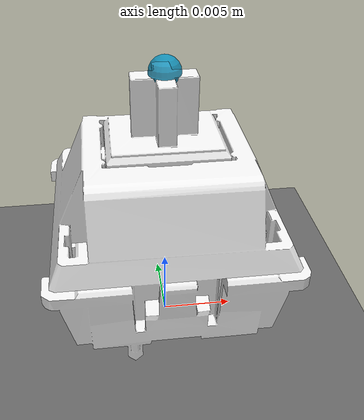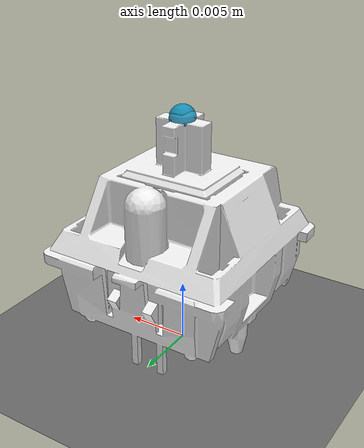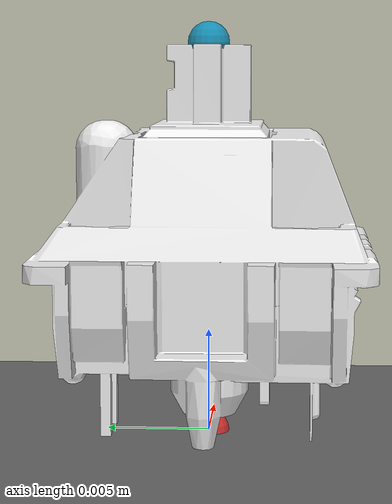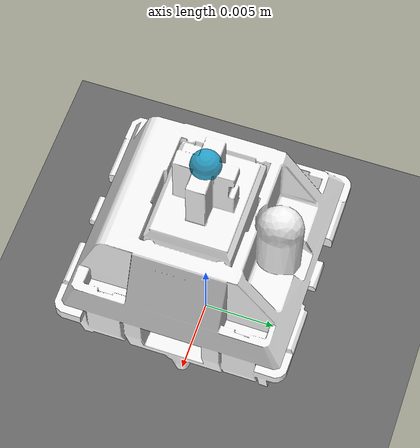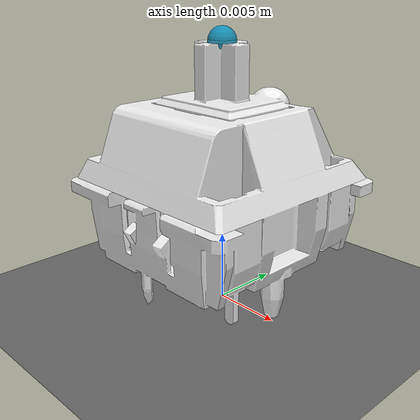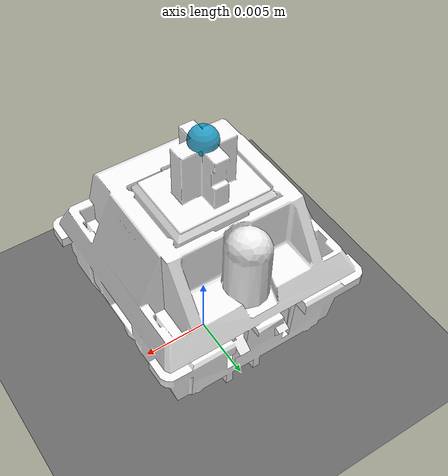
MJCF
<mujoco model="keyboard_switch_1u">

  <compiler angle="radian" autolimits="true"/>

  <option gravity="0 0 -9.81" timestep="0.002"/>

  <asset>
    <material name="abs_dark"
              rgba="0.95 0.95 0.95 1"
              specular="0.3"
              shininess="0.4"
              reflectance="0.05"/>

    <material name="abs_dark_collision"
              rgba="0.12 0.12 0.12 0.0"/>

    <material name="stem_red"
              rgba="0.85 0.1 0.1 1"
              specular="0.4"
              shininess="0.5"/>

    <mesh name="switch_mesh"
          file="../../models/meshes/Switch_Decimated.stl"
          scale="0.001 0.001 0.001"
          refpos="-7.350 0.053 -7.350"
          refquat="0.7071 -0.7071 0 0"/>

  </asset>

  <worldbody>

    <!-- Static ground plane -->
    <geom name="ground" type="plane" size="1 1 0.1"
          pos="0 0 0"
          friction="0.8 0.005 0.0001"
          rgba="0.4 0.4 0.4 1"/>

    <body name="switch_1u" pos="0 0 0">

      <inertial pos="0 0 0.00945"
                mass="0.009"
                diaginertia="2.1e-7 2.1e-7 1.9e-7"/>

      <freejoint name="switch_free"/>

      <geom name="switch_visual"
        type="mesh"
        mesh="switch_mesh"
        pos="-0.01475 -0.00002 0.00945"
        material="abs_dark"
        contype="0"
        conaffinity="0"/>

      <!-- ── PRIMITIVE COLLISION GEOMS ────────────────────────────────
           Invisible (alpha=0) — used for contact only
           Two primitives: main housing box + stem cylinder
      -->

      <!-- Main housing box -->
      <!-- 15.6×15.6×11.9mm, half = 0.0078, 0.0078, 0.00595 -->
      <!-- center z_local = 0.00595 (bottom face at z=0) -->
      <geom name="switch_housing_col"
            type="box"
            size="0.0078 0.0078 0.00595"
            pos="0 0 0.00595"
            material="abs_dark_collision"
            density="1050"
            friction="0.6 0.005 0.0001"
            condim="4"
            priority="1"/>

      <!-- Stem cylinder -->
      <!-- radius=4mm, half-height=3.5mm -->
      <!-- center z_local = 0.0119 + 0.0035 = 0.0154 -->
      <geom name="switch_stem_col"
            type="cylinder"
            size="0.004 0.0035"
            pos="0 0 0.0154"
            material="abs_dark_collision"
            density="800"
            friction="0.6 0.005 0.0001"
            condim="4"
            priority="1"/>

      <!-- ══════════════════════════════════════════════════════════════
           REGISTRATION SITES
           ══════════════════════════════════════════════════════════════ -->

      <!-- Bottom face center — insertion target point -->
      <!-- Robot aligns this to hot-swap socket site on PCB -->
      <site name="insertion_point"
            type="sphere"
            size="0.001"
            pos="0 0 0"
            rgba="1 0.2 0.2 0.8"/>

      <!-- Top face center — vacuum grasp point -->
      <site name="vacuum_grasp"
            type="sphere"
            size="0.001"
            pos="0 0 0.0189"
            rgba="0 0.6 0.8 0.8"/>

      <!-- Housing top face — plate clearance reference -->
      <!-- Aluminum plate sits at this Z when switch is fully seated -->
      <site name="housing_top"
            type="sphere"
            size="0.001"
            pos="0 0 0.0119"
            rgba="0 0.8 0.2 0.6"/>

      <!-- Switch center reference -->
      <site name="switch_center"
            type="sphere"
            size="0.001"
            pos="0 0 0.00945"
            rgba="1 1 0 0.4"/>

    </body>

  </worldbody>

</mujoco>
